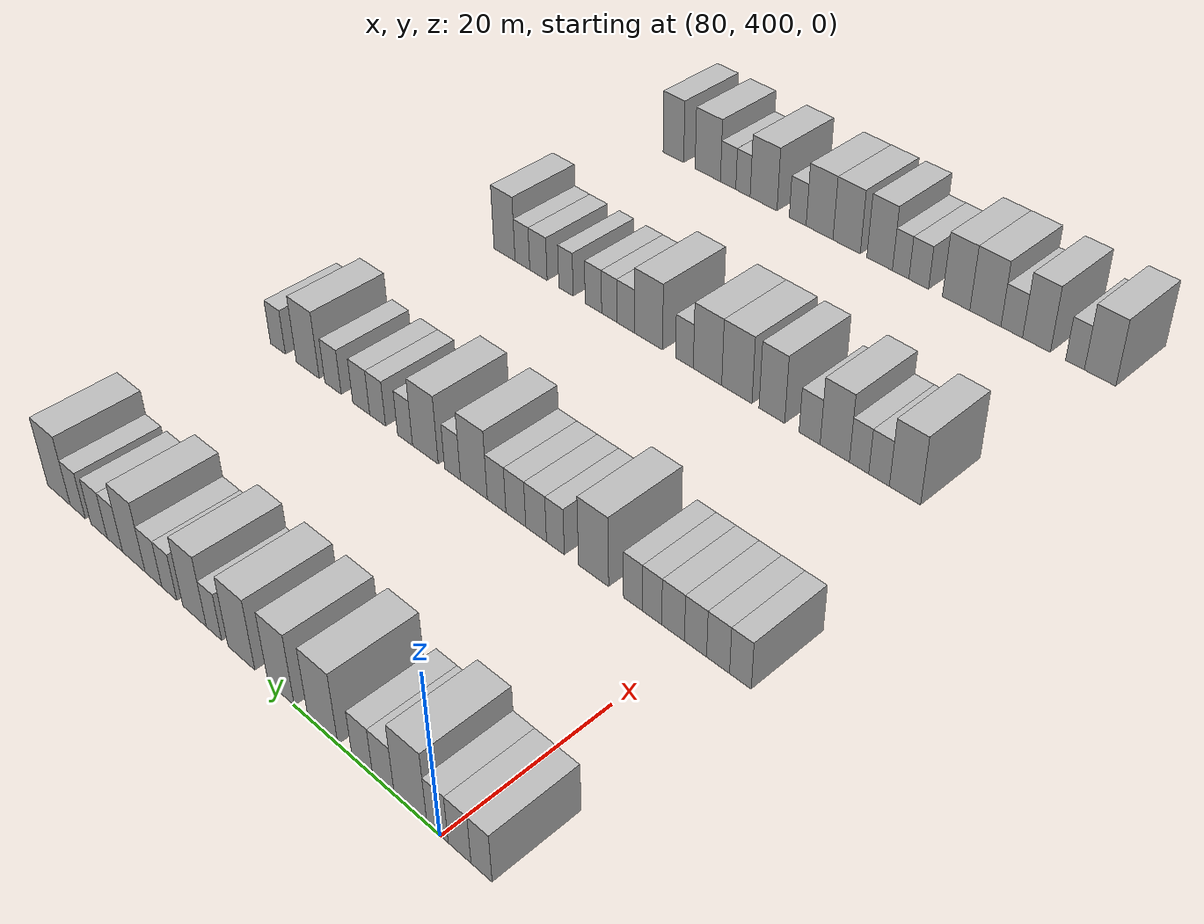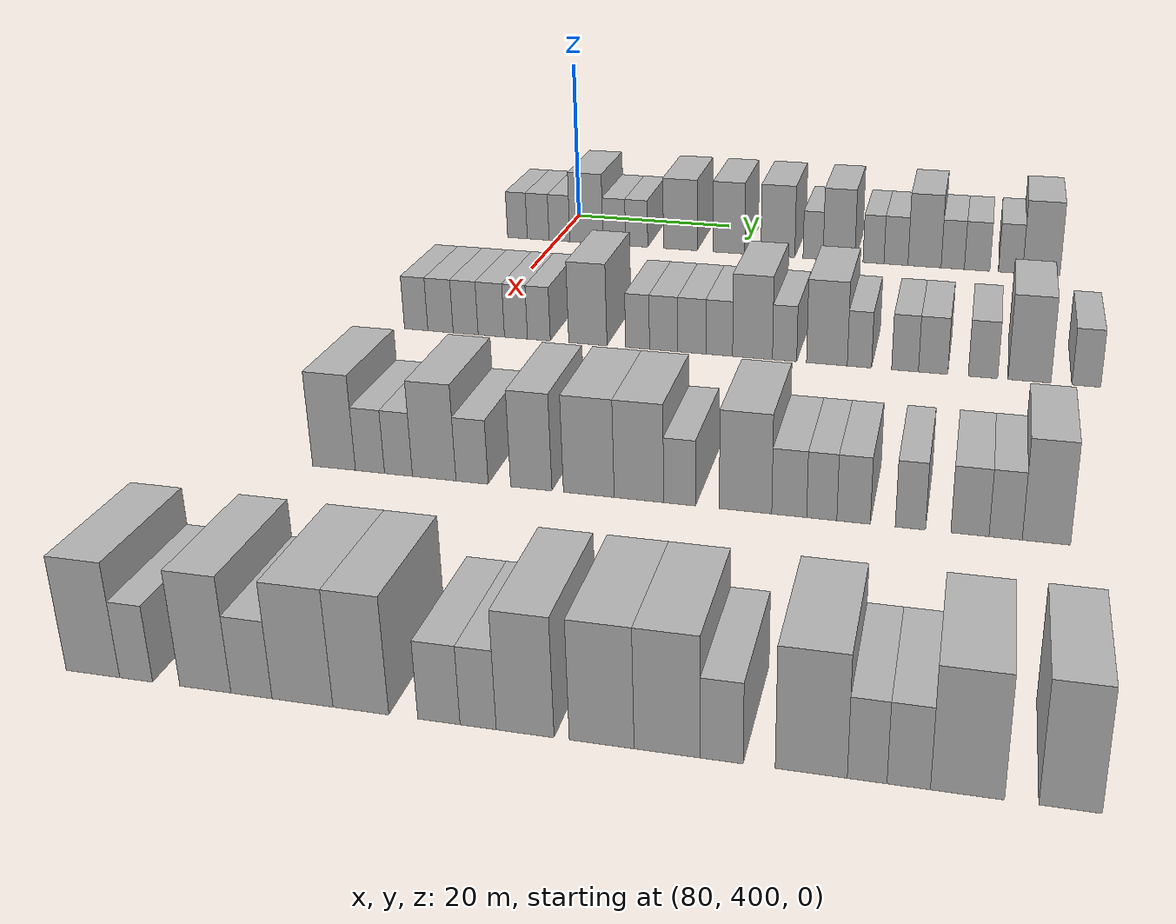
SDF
<sdf version="1.6">
 <world name="default">
  <model name="building_678">
   <static>1</static>
   <pose>85.0000 394.8514 0 0.000000 0.000000 0.000000</pose>
   <link name="link">
    <pose>0 0 3.00 0 0 0</pose>
    <collision name="collision"><geometry><box><size>10.0000 2.5784 6.0000</size></box></geometry></collision>
    <visual name="visual">
     <cast_shadows>0</cast_shadows>
     <geometry><box><size>10.0000 2.5784 6.0000</size></box></geometry>
     <material>
      <script>
       <uri>model://HANNAS_wall/materials/scripts</uri>
       <uri>model://HANNAS_wall/materials/textures</uri>
       <name>vrc/HANNAS_wall</name>
      </script>
     </material>
    </visual>
   </link>
  </model>
  <model name="building_679">
   <static>1</static>
   <pose>85.0000 397.5650 0 0.000000 0.000000 0.000000</pose>
   <link name="link">
    <pose>0 0 3.00 0 0 0</pose>
    <collision name="collision"><geometry><box><size>10.0000 2.8488 6.0000</size></box></geometry></collision>
    <visual name="visual">
     <cast_shadows>0</cast_shadows>
     <geometry><box><size>10.0000 2.8488 6.0000</size></box></geometry>
     <material>
      <script>
       <uri>model://HANNAS_wall/materials/scripts</uri>
       <uri>model://HANNAS_wall/materials/textures</uri>
       <name>vrc/HANNAS_wall</name>
      </script>
     </material>
    </visual>
   </link>
  </model>
  <model name="building_680">
   <static>1</static>
   <pose>85.0000 400.3410 0 0.000000 0.000000 0.000000</pose>
   <link name="link">
    <pose>0 0 3.00 0 0 0</pose>
    <collision name="collision"><geometry><box><size>10.0000 2.7032 6.0000</size></box></geometry></collision>
    <visual name="visual">
     <cast_shadows>0</cast_shadows>
     <geometry><box><size>10.0000 2.7032 6.0000</size></box></geometry>
     <material>
      <script>
       <uri>model://HANNAS_wall/materials/scripts</uri>
       <uri>model://HANNAS_wall/materials/textures</uri>
       <name>vrc/HANNAS_wall</name>
      </script>
     </material>
    </visual>
   </link>
  </model>
  <model name="building_681">
   <static>1</static>
   <pose>85.0000 403.8261 0 0.000000 0.000000 0.000000</pose>
   <link name="link">
    <pose>0 0 4.50 0 0 0</pose>
    <collision name="collision"><geometry><box><size>10.0000 4.2671 9.0000</size></box></geometry></collision>
    <visual name="visual">
     <cast_shadows>0</cast_shadows>
     <geometry><box><size>10.0000 4.2671 9.0000</size></box></geometry>
     <material>
      <script>
       <uri>model://HANNAS_wall/materials/scripts</uri>
       <uri>model://HANNAS_wall/materials/textures</uri>
       <name>vrc/HANNAS_wall</name>
      </script>
     </material>
    </visual>
   </link>
  </model>
  <model name="building_682">
   <static>1</static>
   <pose>85.0000 407.4063 0 0.000000 0.000000 0.000000</pose>
   <link name="link">
    <pose>0 0 3.00 0 0 0</pose>
    <collision name="collision"><geometry><box><size>10.0000 2.8934 6.0000</size></box></geometry></collision>
    <visual name="visual">
     <cast_shadows>0</cast_shadows>
     <geometry><box><size>10.0000 2.8934 6.0000</size></box></geometry>
     <material>
      <script>
       <uri>model://HANNAS_wall/materials/scripts</uri>
       <uri>model://HANNAS_wall/materials/textures</uri>
       <name>vrc/HANNAS_wall</name>
      </script>
     </material>
    </visual>
   </link>
  </model>
  <model name="building_683">
   <static>1</static>
   <pose>85.0000 410.2593 0 0.000000 0.000000 0.000000</pose>
   <link name="link">
    <pose>0 0 3.00 0 0 0</pose>
    <collision name="collision"><geometry><box><size>10.0000 2.8126 6.0000</size></box></geometry></collision>
    <visual name="visual">
     <cast_shadows>0</cast_shadows>
     <geometry><box><size>10.0000 2.8126 6.0000</size></box></geometry>
     <material>
      <script>
       <uri>model://HANNAS_wall/materials/scripts</uri>
       <uri>model://HANNAS_wall/materials/textures</uri>
       <name>vrc/HANNAS_wall</name>
      </script>
     </material>
    </visual>
   </link>
  </model>
  <model name="building_684">
   <static>1</static>
   <pose>85.0000 415.7865 0 0.000000 0.000000 0.000000</pose>
   <link name="link">
    <pose>0 0 4.50 0 0 0</pose>
    <collision name="collision"><geometry><box><size>10.0000 4.2417 9.0000</size></box></geometry></collision>
    <visual name="visual">
     <cast_shadows>0</cast_shadows>
     <geometry><box><size>10.0000 4.2417 9.0000</size></box></geometry>
     <material>
      <script>
       <uri>model://HANNAS_wall/materials/scripts</uri>
       <uri>model://HANNAS_wall/materials/textures</uri>
       <name>vrc/HANNAS_wall</name>
      </script>
     </material>
    </visual>
   </link>
  </model>
  <model name="building_685">
   <static>1</static>
   <pose>85.0000 421.8602 0 0.000000 0.000000 0.000000</pose>
   <link name="link">
    <pose>0 0 4.50 0 0 0</pose>
    <collision name="collision"><geometry><box><size>10.0000 3.9057 9.0000</size></box></geometry></collision>
    <visual name="visual">
     <cast_shadows>0</cast_shadows>
     <geometry><box><size>10.0000 3.9057 9.0000</size></box></geometry>
     <material>
      <script>
       <uri>model://HANNAS_wall/materials/scripts</uri>
       <uri>model://HANNAS_wall/materials/textures</uri>
       <name>vrc/HANNAS_wall</name>
      </script>
     </material>
    </visual>
   </link>
  </model>
  <model name="building_686">
   <static>1</static>
   <pose>85.0000 427.8847 0 0.000000 0.000000 0.000000</pose>
   <link name="link">
    <pose>0 0 4.50 0 0 0</pose>
    <collision name="collision"><geometry><box><size>10.0000 4.1433 9.0000</size></box></geometry></collision>
    <visual name="visual">
     <cast_shadows>0</cast_shadows>
     <geometry><box><size>10.0000 4.1433 9.0000</size></box></geometry>
     <material>
      <script>
       <uri>model://HANNAS_wall/materials/scripts</uri>
       <uri>model://HANNAS_wall/materials/textures</uri>
       <name>vrc/HANNAS_wall</name>
      </script>
     </material>
    </visual>
   </link>
  </model>
  <model name="building_687">
   <static>1</static>
   <pose>85.0000 432.1709 0 0.000000 0.000000 0.000000</pose>
   <link name="link">
    <pose>0 0 3.00 0 0 0</pose>
    <collision name="collision"><geometry><box><size>10.0000 2.4290 6.0000</size></box></geometry></collision>
    <visual name="visual">
     <cast_shadows>0</cast_shadows>
     <geometry><box><size>10.0000 2.4290 6.0000</size></box></geometry>
     <material>
      <script>
       <uri>model://HANNAS_wall/materials/scripts</uri>
       <uri>model://HANNAS_wall/materials/textures</uri>
       <name>vrc/HANNAS_wall</name>
      </script>
     </material>
    </visual>
   </link>
  </model>
  <model name="building_688">
   <static>1</static>
   <pose>85.0000 435.2938 0 0.000000 0.000000 0.000000</pose>
   <link name="link">
    <pose>0 0 4.50 0 0 0</pose>
    <collision name="collision"><geometry><box><size>10.0000 3.8169 9.0000</size></box></geometry></collision>
    <visual name="visual">
     <cast_shadows>0</cast_shadows>
     <geometry><box><size>10.0000 3.8169 9.0000</size></box></geometry>
     <material>
      <script>
       <uri>model://HANNAS_wall/materials/scripts</uri>
       <uri>model://HANNAS_wall/materials/textures</uri>
       <name>vrc/HANNAS_wall</name>
      </script>
     </material>
    </visual>
   </link>
  </model>
  <model name="building_689">
   <static>1</static>
   <pose>85.0000 439.4492 0 0.000000 0.000000 0.000000</pose>
   <link name="link">
    <pose>0 0 3.00 0 0 0</pose>
    <collision name="collision"><geometry><box><size>10.0000 2.4938 6.0000</size></box></geometry></collision>
    <visual name="visual">
     <cast_shadows>0</cast_shadows>
     <geometry><box><size>10.0000 2.4938 6.0000</size></box></geometry>
     <material>
      <script>
       <uri>model://HANNAS_wall/materials/scripts</uri>
       <uri>model://HANNAS_wall/materials/textures</uri>
       <name>vrc/HANNAS_wall</name>
      </script>
     </material>
    </visual>
   </link>
  </model>
  <model name="building_690">
   <static>1</static>
   <pose>85.0000 442.1234 0 0.000000 0.000000 0.000000</pose>
   <link name="link">
    <pose>0 0 3.00 0 0 0</pose>
    <collision name="collision"><geometry><box><size>10.0000 2.8547 6.0000</size></box></geometry></collision>
    <visual name="visual">
     <cast_shadows>0</cast_shadows>
     <geometry><box><size>10.0000 2.8547 6.0000</size></box></geometry>
     <material>
      <script>
       <uri>model://HANNAS_wall/materials/scripts</uri>
       <uri>model://HANNAS_wall/materials/textures</uri>
       <name>vrc/HANNAS_wall</name>
      </script>
     </material>
    </visual>
   </link>
  </model>
  <model name="building_691">
   <static>1</static>
   <pose>85.0000 445.5032 0 0.000000 0.000000 0.000000</pose>
   <link name="link">
    <pose>0 0 4.50 0 0 0</pose>
    <collision name="collision"><geometry><box><size>10.0000 3.9049 9.0000</size></box></geometry></collision>
    <visual name="visual">
     <cast_shadows>0</cast_shadows>
     <geometry><box><size>10.0000 3.9049 9.0000</size></box></geometry>
     <material>
      <script>
       <uri>model://HANNAS_wall/materials/scripts</uri>
       <uri>model://HANNAS_wall/materials/textures</uri>
       <name>vrc/HANNAS_wall</name>
      </script>
     </material>
    </visual>
   </link>
  </model>
  <model name="building_692">
   <static>1</static>
   <pose>85.0000 448.8185 0 0.000000 0.000000 0.000000</pose>
   <link name="link">
    <pose>0 0 3.00 0 0 0</pose>
    <collision name="collision"><geometry><box><size>10.0000 2.7257 6.0000</size></box></geometry></collision>
    <visual name="visual">
     <cast_shadows>0</cast_shadows>
     <geometry><box><size>10.0000 2.7257 6.0000</size></box></geometry>
     <material>
      <script>
       <uri>model://HANNAS_wall/materials/scripts</uri>
       <uri>model://HANNAS_wall/materials/textures</uri>
       <name>vrc/HANNAS_wall</name>
      </script>
     </material>
    </visual>
   </link>
  </model>
  <model name="building_693">
   <static>1</static>
   <pose>85.0000 451.6635 0 0.000000 0.000000 0.000000</pose>
   <link name="link">
    <pose>0 0 3.00 0 0 0</pose>
    <collision name="collision"><geometry><box><size>10.0000 2.9644 6.0000</size></box></geometry></collision>
    <visual name="visual">
     <cast_shadows>0</cast_shadows>
     <geometry><box><size>10.0000 2.9644 6.0000</size></box></geometry>
     <material>
      <script>
       <uri>model://HANNAS_wall/materials/scripts</uri>
       <uri>model://HANNAS_wall/materials/textures</uri>
       <name>vrc/HANNAS_wall</name>
      </script>
     </material>
    </visual>
   </link>
  </model>
  <model name="building_694">
   <static>1</static>
   <pose>85.0000 455.5320 0 0.000000 0.000000 0.000000</pose>
   <link name="link">
    <pose>0 0 3.00 0 0 0</pose>
    <collision name="collision"><geometry><box><size>10.0000 2.7726 6.0000</size></box></geometry></collision>
    <visual name="visual">
     <cast_shadows>0</cast_shadows>
     <geometry><box><size>10.0000 2.7726 6.0000</size></box></geometry>
     <material>
      <script>
       <uri>model://HANNAS_wall/materials/scripts</uri>
       <uri>model://HANNAS_wall/materials/textures</uri>
       <name>vrc/HANNAS_wall</name>
      </script>
     </material>
    </visual>
   </link>
  </model>
  <model name="building_695">
   <static>1</static>
   <pose>85.0000 459.0496 0 0.000000 0.000000 0.000000</pose>
   <link name="link">
    <pose>0 0 4.50 0 0 0</pose>
    <collision name="collision"><geometry><box><size>10.0000 4.2625 9.0000</size></box></geometry></collision>
    <visual name="visual">
     <cast_shadows>0</cast_shadows>
     <geometry><box><size>10.0000 4.2625 9.0000</size></box></geometry>
     <material>
      <script>
       <uri>model://HANNAS_wall/materials/scripts</uri>
       <uri>model://HANNAS_wall/materials/textures</uri>
       <name>vrc/HANNAS_wall</name>
      </script>
     </material>
    </visual>
   </link>
  </model>
  <model name="building_905">
   <static>1</static>
   <pose>115.0000 393.6490 0 0.000000 0.000000 0.000000</pose>
   <link name="link">
    <pose>0 0 3.00 0 0 0</pose>
    <collision name="collision"><geometry><box><size>10.0000 2.6375 6.0000</size></box></geometry></collision>
    <visual name="visual">
     <cast_shadows>0</cast_shadows>
     <geometry><box><size>10.0000 2.6375 6.0000</size></box></geometry>
     <material>
      <script>
       <uri>model://HANNAS_wall/materials/scripts</uri>
       <uri>model://HANNAS_wall/materials/textures</uri>
       <name>vrc/HANNAS_wall</name>
      </script>
     </material>
    </visual>
   </link>
  </model>
  <model name="building_906">
   <static>1</static>
   <pose>115.0000 396.3883 0 0.000000 0.000000 0.000000</pose>
   <link name="link">
    <pose>0 0 3.00 0 0 0</pose>
    <collision name="collision"><geometry><box><size>10.0000 2.8410 6.0000</size></box></geometry></collision>
    <visual name="visual">
     <cast_shadows>0</cast_shadows>
     <geometry><box><size>10.0000 2.8410 6.0000</size></box></geometry>
     <material>
      <script>
       <uri>model://HANNAS_wall/materials/scripts</uri>
       <uri>model://HANNAS_wall/materials/textures</uri>
       <name>vrc/HANNAS_wall</name>
      </script>
     </material>
    </visual>
   </link>
  </model>
  <model name="building_907">
   <static>1</static>
   <pose>115.0000 399.1992 0 0.000000 0.000000 0.000000</pose>
   <link name="link">
    <pose>0 0 3.00 0 0 0</pose>
    <collision name="collision"><geometry><box><size>10.0000 2.7807 6.0000</size></box></geometry></collision>
    <visual name="visual">
     <cast_shadows>0</cast_shadows>
     <geometry><box><size>10.0000 2.7807 6.0000</size></box></geometry>
     <material>
      <script>
       <uri>model://HANNAS_wall/materials/scripts</uri>
       <uri>model://HANNAS_wall/materials/textures</uri>
       <name>vrc/HANNAS_wall</name>
      </script>
     </material>
    </visual>
   </link>
  </model>
  <model name="building_908">
   <static>1</static>
   <pose>115.0000 402.0448 0 0.000000 0.000000 0.000000</pose>
   <link name="link">
    <pose>0 0 3.00 0 0 0</pose>
    <collision name="collision"><geometry><box><size>10.0000 2.9106 6.0000</size></box></geometry></collision>
    <visual name="visual">
     <cast_shadows>0</cast_shadows>
     <geometry><box><size>10.0000 2.9106 6.0000</size></box></geometry>
     <material>
      <script>
       <uri>model://HANNAS_wall/materials/scripts</uri>
       <uri>model://HANNAS_wall/materials/textures</uri>
       <name>vrc/HANNAS_wall</name>
      </script>
     </material>
    </visual>
   </link>
  </model>
  <model name="building_909">
   <static>1</static>
   <pose>115.0000 404.7668 0 0.000000 0.000000 0.000000</pose>
   <link name="link">
    <pose>0 0 3.00 0 0 0</pose>
    <collision name="collision"><geometry><box><size>10.0000 2.5333 6.0000</size></box></geometry></collision>
    <visual name="visual">
     <cast_shadows>0</cast_shadows>
     <geometry><box><size>10.0000 2.5333 6.0000</size></box></geometry>
     <material>
      <script>
       <uri>model://HANNAS_wall/materials/scripts</uri>
       <uri>model://HANNAS_wall/materials/textures</uri>
       <name>vrc/HANNAS_wall</name>
      </script>
     </material>
    </visual>
   </link>
  </model>
  <model name="building_910">
   <static>1</static>
   <pose>115.0000 407.2809 0 0.000000 0.000000 0.000000</pose>
   <link name="link">
    <pose>0 0 3.00 0 0 0</pose>
    <collision name="collision"><geometry><box><size>10.0000 2.4949 6.0000</size></box></geometry></collision>
    <visual name="visual">
     <cast_shadows>0</cast_shadows>
     <geometry><box><size>10.0000 2.4949 6.0000</size></box></geometry>
     <material>
      <script>
       <uri>model://HANNAS_wall/materials/scripts</uri>
       <uri>model://HANNAS_wall/materials/textures</uri>
       <name>vrc/HANNAS_wall</name>
      </script>
     </material>
    </visual>
   </link>
  </model>
  <model name="building_911">
   <static>1</static>
   <pose>115.0000 412.5901 0 0.000000 0.000000 0.000000</pose>
   <link name="link">
    <pose>0 0 4.50 0 0 0</pose>
    <collision name="collision"><geometry><box><size>10.0000 4.1234 9.0000</size></box></geometry></collision>
    <visual name="visual">
     <cast_shadows>0</cast_shadows>
     <geometry><box><size>10.0000 4.1234 9.0000</size></box></geometry>
     <material>
      <script>
       <uri>model://HANNAS_wall/materials/scripts</uri>
       <uri>model://HANNAS_wall/materials/textures</uri>
       <name>vrc/HANNAS_wall</name>
      </script>
     </material>
    </visual>
   </link>
  </model>
  <model name="building_912">
   <static>1</static>
   <pose>115.0000 417.9195 0 0.000000 0.000000 0.000000</pose>
   <link name="link">
    <pose>0 0 3.00 0 0 0</pose>
    <collision name="collision"><geometry><box><size>10.0000 2.5356 6.0000</size></box></geometry></collision>
    <visual name="visual">
     <cast_shadows>0</cast_shadows>
     <geometry><box><size>10.0000 2.5356 6.0000</size></box></geometry>
     <material>
      <script>
       <uri>model://HANNAS_wall/materials/scripts</uri>
       <uri>model://HANNAS_wall/materials/textures</uri>
       <name>vrc/HANNAS_wall</name>
      </script>
     </material>
    </visual>
   </link>
  </model>
  <model name="building_913">
   <static>1</static>
   <pose>115.0000 420.6814 0 0.000000 0.000000 0.000000</pose>
   <link name="link">
    <pose>0 0 3.00 0 0 0</pose>
    <collision name="collision"><geometry><box><size>10.0000 2.9881 6.0000</size></box></geometry></collision>
    <visual name="visual">
     <cast_shadows>0</cast_shadows>
     <geometry><box><size>10.0000 2.9881 6.0000</size></box></geometry>
     <material>
      <script>
       <uri>model://HANNAS_wall/materials/scripts</uri>
       <uri>model://HANNAS_wall/materials/textures</uri>
       <name>vrc/HANNAS_wall</name>
      </script>
     </material>
    </visual>
   </link>
  </model>
  <model name="building_914">
   <static>1</static>
   <pose>115.0000 423.6394 0 0.000000 0.000000 0.000000</pose>
   <link name="link">
    <pose>0 0 3.00 0 0 0</pose>
    <collision name="collision"><geometry><box><size>10.0000 2.9279 6.0000</size></box></geometry></collision>
    <visual name="visual">
     <cast_shadows>0</cast_shadows>
     <geometry><box><size>10.0000 2.9279 6.0000</size></box></geometry>
     <material>
      <script>
       <uri>model://HANNAS_wall/materials/scripts</uri>
       <uri>model://HANNAS_wall/materials/textures</uri>
       <name>vrc/HANNAS_wall</name>
      </script>
     </material>
    </visual>
   </link>
  </model>
  <model name="building_915">
   <static>1</static>
   <pose>115.0000 426.4967 0 0.000000 0.000000 0.000000</pose>
   <link name="link">
    <pose>0 0 3.00 0 0 0</pose>
    <collision name="collision"><geometry><box><size>10.0000 2.7866 6.0000</size></box></geometry></collision>
    <visual name="visual">
     <cast_shadows>0</cast_shadows>
     <geometry><box><size>10.0000 2.7866 6.0000</size></box></geometry>
     <material>
      <script>
       <uri>model://HANNAS_wall/materials/scripts</uri>
       <uri>model://HANNAS_wall/materials/textures</uri>
       <name>vrc/HANNAS_wall</name>
      </script>
     </material>
    </visual>
   </link>
  </model>
  <model name="building_916">
   <static>1</static>
   <pose>115.0000 429.9448 0 0.000000 0.000000 0.000000</pose>
   <link name="link">
    <pose>0 0 4.50 0 0 0</pose>
    <collision name="collision"><geometry><box><size>10.0000 4.1096 9.0000</size></box></geometry></collision>
    <visual name="visual">
     <cast_shadows>0</cast_shadows>
     <geometry><box><size>10.0000 4.1096 9.0000</size></box></geometry>
     <material>
      <script>
       <uri>model://HANNAS_wall/materials/scripts</uri>
       <uri>model://HANNAS_wall/materials/textures</uri>
       <name>vrc/HANNAS_wall</name>
      </script>
     </material>
    </visual>
   </link>
  </model>
  <model name="building_917">
   <static>1</static>
   <pose>115.0000 433.2376 0 0.000000 0.000000 0.000000</pose>
   <link name="link">
    <pose>0 0 3.00 0 0 0</pose>
    <collision name="collision"><geometry><box><size>10.0000 2.4759 6.0000</size></box></geometry></collision>
    <visual name="visual">
     <cast_shadows>0</cast_shadows>
     <geometry><box><size>10.0000 2.4759 6.0000</size></box></geometry>
     <material>
      <script>
       <uri>model://HANNAS_wall/materials/scripts</uri>
       <uri>model://HANNAS_wall/materials/textures</uri>
       <name>vrc/HANNAS_wall</name>
      </script>
     </material>
    </visual>
   </link>
  </model>
  <model name="building_918">
   <static>1</static>
   <pose>115.0000 437.5346 0 0.000000 0.000000 0.000000</pose>
   <link name="link">
    <pose>0 0 4.50 0 0 0</pose>
    <collision name="collision"><geometry><box><size>10.0000 4.1181 9.0000</size></box></geometry></collision>
    <visual name="visual">
     <cast_shadows>0</cast_shadows>
     <geometry><box><size>10.0000 4.1181 9.0000</size></box></geometry>
     <material>
      <script>
       <uri>model://HANNAS_wall/materials/scripts</uri>
       <uri>model://HANNAS_wall/materials/textures</uri>
       <name>vrc/HANNAS_wall</name>
      </script>
     </material>
    </visual>
   </link>
  </model>
  <model name="building_919">
   <static>1</static>
   <pose>115.0000 440.8114 0 0.000000 0.000000 0.000000</pose>
   <link name="link">
    <pose>0 0 3.00 0 0 0</pose>
    <collision name="collision"><geometry><box><size>10.0000 2.4356 6.0000</size></box></geometry></collision>
    <visual name="visual">
     <cast_shadows>0</cast_shadows>
     <geometry><box><size>10.0000 2.4356 6.0000</size></box></geometry>
     <material>
      <script>
       <uri>model://HANNAS_wall/materials/scripts</uri>
       <uri>model://HANNAS_wall/materials/textures</uri>
       <name>vrc/HANNAS_wall</name>
      </script>
     </material>
    </visual>
   </link>
  </model>
  <model name="building_920">
   <static>1</static>
   <pose>115.0000 445.3553 0 0.000000 0.000000 0.000000</pose>
   <link name="link">
    <pose>0 0 3.00 0 0 0</pose>
    <collision name="collision"><geometry><box><size>10.0000 2.6522 6.0000</size></box></geometry></collision>
    <visual name="visual">
     <cast_shadows>0</cast_shadows>
     <geometry><box><size>10.0000 2.6522 6.0000</size></box></geometry>
     <material>
      <script>
       <uri>model://HANNAS_wall/materials/scripts</uri>
       <uri>model://HANNAS_wall/materials/textures</uri>
       <name>vrc/HANNAS_wall</name>
      </script>
     </material>
    </visual>
   </link>
  </model>
  <model name="building_921">
   <static>1</static>
   <pose>115.0000 448.1251 0 0.000000 0.000000 0.000000</pose>
   <link name="link">
    <pose>0 0 3.00 0 0 0</pose>
    <collision name="collision"><geometry><box><size>10.0000 2.8874 6.0000</size></box></geometry></collision>
    <visual name="visual">
     <cast_shadows>0</cast_shadows>
     <geometry><box><size>10.0000 2.8874 6.0000</size></box></geometry>
     <material>
      <script>
       <uri>model://HANNAS_wall/materials/scripts</uri>
       <uri>model://HANNAS_wall/materials/textures</uri>
       <name>vrc/HANNAS_wall</name>
      </script>
     </material>
    </visual>
   </link>
  </model>
  <model name="building_922">
   <static>1</static>
   <pose>115.0000 452.9987 0 0.000000 0.000000 0.000000</pose>
   <link name="link">
    <pose>0 0 3.00 0 0 0</pose>
    <collision name="collision"><geometry><box><size>10.0000 2.8598 6.0000</size></box></geometry></collision>
    <visual name="visual">
     <cast_shadows>0</cast_shadows>
     <geometry><box><size>10.0000 2.8598 6.0000</size></box></geometry>
     <material>
      <script>
       <uri>model://HANNAS_wall/materials/scripts</uri>
       <uri>model://HANNAS_wall/materials/textures</uri>
       <name>vrc/HANNAS_wall</name>
      </script>
     </material>
    </visual>
   </link>
  </model>
  <model name="building_923">
   <static>1</static>
   <pose>115.0000 457.4845 0 0.000000 0.000000 0.000000</pose>
   <link name="link">
    <pose>0 0 4.50 0 0 0</pose>
    <collision name="collision"><geometry><box><size>10.0000 4.1117 9.0000</size></box></geometry></collision>
    <visual name="visual">
     <cast_shadows>0</cast_shadows>
     <geometry><box><size>10.0000 4.1117 9.0000</size></box></geometry>
     <material>
      <script>
       <uri>model://HANNAS_wall/materials/scripts</uri>
       <uri>model://HANNAS_wall/materials/textures</uri>
       <name>vrc/HANNAS_wall</name>
      </script>
     </material>
    </visual>
   </link>
  </model>
  <model name="building_924">
   <static>1</static>
   <pose>115.0000 462.9032 0 0.000000 0.000000 0.000000</pose>
   <link name="link">
    <pose>0 0 3.00 0 0 0</pose>
    <collision name="collision"><geometry><box><size>10.0000 2.7257 6.0000</size></box></geometry></collision>
    <visual name="visual">
     <cast_shadows>0</cast_shadows>
     <geometry><box><size>10.0000 2.7257 6.0000</size></box></geometry>
     <material>
      <script>
       <uri>model://HANNAS_wall/materials/scripts</uri>
       <uri>model://HANNAS_wall/materials/textures</uri>
       <name>vrc/HANNAS_wall</name>
      </script>
     </material>
    </visual>
   </link>
  </model>
  <model name="building_1121">
   <static>1</static>
   <pose>145.0000 398.4001 0 0.000000 0.000000 0.000000</pose>
   <link name="link">
    <pose>0 0 4.50 0 0 0</pose>
    <collision name="collision"><geometry><box><size>10.0000 3.9708 9.0000</size></box></geometry></collision>
    <visual name="visual">
     <cast_shadows>0</cast_shadows>
     <geometry><box><size>10.0000 3.9708 9.0000</size></box></geometry>
     <material>
      <script>
       <uri>model://HANNAS_wall/materials/scripts</uri>
       <uri>model://HANNAS_wall/materials/textures</uri>
       <name>vrc/HANNAS_wall</name>
      </script>
     </material>
    </visual>
   </link>
  </model>
  <model name="building_1122">
   <static>1</static>
   <pose>145.0000 401.7222 0 0.000000 0.000000 0.000000</pose>
   <link name="link">
    <pose>0 0 3.00 0 0 0</pose>
    <collision name="collision"><geometry><box><size>10.0000 2.6736 6.0000</size></box></geometry></collision>
    <visual name="visual">
     <cast_shadows>0</cast_shadows>
     <geometry><box><size>10.0000 2.6736 6.0000</size></box></geometry>
     <material>
      <script>
       <uri>model://HANNAS_wall/materials/scripts</uri>
       <uri>model://HANNAS_wall/materials/textures</uri>
       <name>vrc/HANNAS_wall</name>
      </script>
     </material>
    </visual>
   </link>
  </model>
  <model name="building_1123">
   <static>1</static>
   <pose>145.0000 404.3338 0 0.000000 0.000000 0.000000</pose>
   <link name="link">
    <pose>0 0 3.00 0 0 0</pose>
    <collision name="collision"><geometry><box><size>10.0000 2.5496 6.0000</size></box></geometry></collision>
    <visual name="visual">
     <cast_shadows>0</cast_shadows>
     <geometry><box><size>10.0000 2.5496 6.0000</size></box></geometry>
     <material>
      <script>
       <uri>model://HANNAS_wall/materials/scripts</uri>
       <uri>model://HANNAS_wall/materials/textures</uri>
       <name>vrc/HANNAS_wall</name>
      </script>
     </material>
    </visual>
   </link>
  </model>
  <model name="building_1124">
   <static>1</static>
   <pose>145.0000 407.5736 0 0.000000 0.000000 0.000000</pose>
   <link name="link">
    <pose>0 0 4.50 0 0 0</pose>
    <collision name="collision"><geometry><box><size>10.0000 3.9299 9.0000</size></box></geometry></collision>
    <visual name="visual">
     <cast_shadows>0</cast_shadows>
     <geometry><box><size>10.0000 3.9299 9.0000</size></box></geometry>
     <material>
      <script>
       <uri>model://HANNAS_wall/materials/scripts</uri>
       <uri>model://HANNAS_wall/materials/textures</uri>
       <name>vrc/HANNAS_wall</name>
      </script>
     </material>
    </visual>
   </link>
  </model>
  <model name="building_1125">
   <static>1</static>
   <pose>145.0000 410.9791 0 0.000000 0.000000 0.000000</pose>
   <link name="link">
    <pose>0 0 3.00 0 0 0</pose>
    <collision name="collision"><geometry><box><size>10.0000 2.8812 6.0000</size></box></geometry></collision>
    <visual name="visual">
     <cast_shadows>0</cast_shadows>
     <geometry><box><size>10.0000 2.8812 6.0000</size></box></geometry>
     <material>
      <script>
       <uri>model://HANNAS_wall/materials/scripts</uri>
       <uri>model://HANNAS_wall/materials/textures</uri>
       <name>vrc/HANNAS_wall</name>
      </script>
     </material>
    </visual>
   </link>
  </model>
  <model name="building_1126">
   <static>1</static>
   <pose>145.0000 416.2349 0 0.000000 0.000000 0.000000</pose>
   <link name="link">
    <pose>0 0 4.50 0 0 0</pose>
    <collision name="collision"><geometry><box><size>10.0000 3.6305 9.0000</size></box></geometry></collision>
    <visual name="visual">
     <cast_shadows>0</cast_shadows>
     <geometry><box><size>10.0000 3.6305 9.0000</size></box></geometry>
     <material>
      <script>
       <uri>model://HANNAS_wall/materials/scripts</uri>
       <uri>model://HANNAS_wall/materials/textures</uri>
       <name>vrc/HANNAS_wall</name>
      </script>
     </material>
    </visual>
   </link>
  </model>
  <model name="building_1127">
   <static>1</static>
   <pose>145.0000 421.2517 0 0.000000 0.000000 0.000000</pose>
   <link name="link">
    <pose>0 0 4.50 0 0 0</pose>
    <collision name="collision"><geometry><box><size>10.0000 4.4030 9.0000</size></box></geometry></collision>
    <visual name="visual">
     <cast_shadows>0</cast_shadows>
     <geometry><box><size>10.0000 4.4030 9.0000</size></box></geometry>
     <material>
      <script>
       <uri>model://HANNAS_wall/materials/scripts</uri>
       <uri>model://HANNAS_wall/materials/textures</uri>
       <name>vrc/HANNAS_wall</name>
      </script>
     </material>
    </visual>
   </link>
  </model>
  <model name="building_1128">
   <static>1</static>
   <pose>145.0000 425.5715 0 0.000000 0.000000 0.000000</pose>
   <link name="link">
    <pose>0 0 4.50 0 0 0</pose>
    <collision name="collision"><geometry><box><size>10.0000 4.2366 9.0000</size></box></geometry></collision>
    <visual name="visual">
     <cast_shadows>0</cast_shadows>
     <geometry><box><size>10.0000 4.2366 9.0000</size></box></geometry>
     <material>
      <script>
       <uri>model://HANNAS_wall/materials/scripts</uri>
       <uri>model://HANNAS_wall/materials/textures</uri>
       <name>vrc/HANNAS_wall</name>
      </script>
     </material>
    </visual>
   </link>
  </model>
  <model name="building_1129">
   <static>1</static>
   <pose>145.0000 429.0307 0 0.000000 0.000000 0.000000</pose>
   <link name="link">
    <pose>0 0 3.00 0 0 0</pose>
    <collision name="collision"><geometry><box><size>10.0000 2.6817 6.0000</size></box></geometry></collision>
    <visual name="visual">
     <cast_shadows>0</cast_shadows>
     <geometry><box><size>10.0000 2.6817 6.0000</size></box></geometry>
     <material>
      <script>
       <uri>model://HANNAS_wall/materials/scripts</uri>
       <uri>model://HANNAS_wall/materials/textures</uri>
       <name>vrc/HANNAS_wall</name>
      </script>
     </material>
    </visual>
   </link>
  </model>
  <model name="building_1130">
   <static>1</static>
   <pose>145.0000 434.5420 0 0.000000 0.000000 0.000000</pose>
   <link name="link">
    <pose>0 0 4.50 0 0 0</pose>
    <collision name="collision"><geometry><box><size>10.0000 4.3409 9.0000</size></box></geometry></collision>
    <visual name="visual">
     <cast_shadows>0</cast_shadows>
     <geometry><box><size>10.0000 4.3409 9.0000</size></box></geometry>
     <material>
      <script>
       <uri>model://HANNAS_wall/materials/scripts</uri>
       <uri>model://HANNAS_wall/materials/textures</uri>
       <name>vrc/HANNAS_wall</name>
      </script>
     </material>
    </visual>
   </link>
  </model>
  <model name="building_1131">
   <static>1</static>
   <pose>145.0000 438.1429 0 0.000000 0.000000 0.000000</pose>
   <link name="link">
    <pose>0 0 3.00 0 0 0</pose>
    <collision name="collision"><geometry><box><size>10.0000 2.8610 6.0000</size></box></geometry></collision>
    <visual name="visual">
     <cast_shadows>0</cast_shadows>
     <geometry><box><size>10.0000 2.8610 6.0000</size></box></geometry>
     <material>
      <script>
       <uri>model://HANNAS_wall/materials/scripts</uri>
       <uri>model://HANNAS_wall/materials/textures</uri>
       <name>vrc/HANNAS_wall</name>
      </script>
     </material>
    </visual>
   </link>
  </model>
  <model name="building_1132">
   <static>1</static>
   <pose>145.0000 440.8025 0 0.000000 0.000000 0.000000</pose>
   <link name="link">
    <pose>0 0 3.00 0 0 0</pose>
    <collision name="collision"><geometry><box><size>10.0000 2.4582 6.0000</size></box></geometry></collision>
    <visual name="visual">
     <cast_shadows>0</cast_shadows>
     <geometry><box><size>10.0000 2.4582 6.0000</size></box></geometry>
     <material>
      <script>
       <uri>model://HANNAS_wall/materials/scripts</uri>
       <uri>model://HANNAS_wall/materials/textures</uri>
       <name>vrc/HANNAS_wall</name>
      </script>
     </material>
    </visual>
   </link>
  </model>
  <model name="building_1133">
   <static>1</static>
   <pose>145.0000 443.3816 0 0.000000 0.000000 0.000000</pose>
   <link name="link">
    <pose>0 0 3.00 0 0 0</pose>
    <collision name="collision"><geometry><box><size>10.0000 2.6999 6.0000</size></box></geometry></collision>
    <visual name="visual">
     <cast_shadows>0</cast_shadows>
     <geometry><box><size>10.0000 2.6999 6.0000</size></box></geometry>
     <material>
      <script>
       <uri>model://HANNAS_wall/materials/scripts</uri>
       <uri>model://HANNAS_wall/materials/textures</uri>
       <name>vrc/HANNAS_wall</name>
      </script>
     </material>
    </visual>
   </link>
  </model>
  <model name="building_1134">
   <static>1</static>
   <pose>145.0000 447.9357 0 0.000000 0.000000 0.000000</pose>
   <link name="link">
    <pose>0 0 3.00 0 0 0</pose>
    <collision name="collision"><geometry><box><size>10.0000 2.4083 6.0000</size></box></geometry></collision>
    <visual name="visual">
     <cast_shadows>0</cast_shadows>
     <geometry><box><size>10.0000 2.4083 6.0000</size></box></geometry>
     <material>
      <script>
       <uri>model://HANNAS_wall/materials/scripts</uri>
       <uri>model://HANNAS_wall/materials/textures</uri>
       <name>vrc/HANNAS_wall</name>
      </script>
     </material>
    </visual>
   </link>
  </model>
  <model name="building_1135">
   <static>1</static>
   <pose>145.0000 452.6323 0 0.000000 0.000000 0.000000</pose>
   <link name="link">
    <pose>0 0 3.00 0 0 0</pose>
    <collision name="collision"><geometry><box><size>10.0000 2.9848 6.0000</size></box></geometry></collision>
    <visual name="visual">
     <cast_shadows>0</cast_shadows>
     <geometry><box><size>10.0000 2.9848 6.0000</size></box></geometry>
     <material>
      <script>
       <uri>model://HANNAS_wall/materials/scripts</uri>
       <uri>model://HANNAS_wall/materials/textures</uri>
       <name>vrc/HANNAS_wall</name>
      </script>
     </material>
    </visual>
   </link>
  </model>
  <model name="building_1136">
   <static>1</static>
   <pose>145.0000 455.4127 0 0.000000 0.000000 0.000000</pose>
   <link name="link">
    <pose>0 0 3.00 0 0 0</pose>
    <collision name="collision"><geometry><box><size>10.0000 2.5759 6.0000</size></box></geometry></collision>
    <visual name="visual">
     <cast_shadows>0</cast_shadows>
     <geometry><box><size>10.0000 2.5759 6.0000</size></box></geometry>
     <material>
      <script>
       <uri>model://HANNAS_wall/materials/scripts</uri>
       <uri>model://HANNAS_wall/materials/textures</uri>
       <name>vrc/HANNAS_wall</name>
      </script>
     </material>
    </visual>
   </link>
  </model>
  <model name="building_1137">
   <static>1</static>
   <pose>145.0000 458.5567 0 0.000000 0.000000 0.000000</pose>
   <link name="link">
    <pose>0 0 4.50 0 0 0</pose>
    <collision name="collision"><geometry><box><size>10.0000 3.7121 9.0000</size></box></geometry></collision>
    <visual name="visual">
     <cast_shadows>0</cast_shadows>
     <geometry><box><size>10.0000 3.7121 9.0000</size></box></geometry>
     <material>
      <script>
       <uri>model://HANNAS_wall/materials/scripts</uri>
       <uri>model://HANNAS_wall/materials/textures</uri>
       <name>vrc/HANNAS_wall</name>
      </script>
     </material>
    </visual>
   </link>
  </model>
  <model name="building_1338">
   <static>1</static>
   <pose>175.0000 394.9979 0 0.000000 0.000000 0.000000</pose>
   <link name="link">
    <pose>0 0 4.50 0 0 0</pose>
    <collision name="collision"><geometry><box><size>10.0000 4.0244 9.0000</size></box></geometry></collision>
    <visual name="visual">
     <cast_shadows>0</cast_shadows>
     <geometry><box><size>10.0000 4.0244 9.0000</size></box></geometry>
     <material>
      <script>
       <uri>model://HANNAS_wall/materials/scripts</uri>
       <uri>model://HANNAS_wall/materials/textures</uri>
       <name>vrc/HANNAS_wall</name>
      </script>
     </material>
    </visual>
   </link>
  </model>
  <model name="building_1339">
   <static>1</static>
   <pose>175.0000 398.2354 0 0.000000 0.000000 0.000000</pose>
   <link name="link">
    <pose>0 0 3.00 0 0 0</pose>
    <collision name="collision"><geometry><box><size>10.0000 2.4505 6.0000</size></box></geometry></collision>
    <visual name="visual">
     <cast_shadows>0</cast_shadows>
     <geometry><box><size>10.0000 2.4505 6.0000</size></box></geometry>
     <material>
      <script>
       <uri>model://HANNAS_wall/materials/scripts</uri>
       <uri>model://HANNAS_wall/materials/textures</uri>
       <name>vrc/HANNAS_wall</name>
      </script>
     </material>
    </visual>
   </link>
  </model>
  <model name="building_1340">
   <static>1</static>
   <pose>175.0000 403.3259 0 0.000000 0.000000 0.000000</pose>
   <link name="link">
    <pose>0 0 4.50 0 0 0</pose>
    <collision name="collision"><geometry><box><size>10.0000 3.7306 9.0000</size></box></geometry></collision>
    <visual name="visual">
     <cast_shadows>0</cast_shadows>
     <geometry><box><size>10.0000 3.7306 9.0000</size></box></geometry>
     <material>
      <script>
       <uri>model://HANNAS_wall/materials/scripts</uri>
       <uri>model://HANNAS_wall/materials/textures</uri>
       <name>vrc/HANNAS_wall</name>
      </script>
     </material>
    </visual>
   </link>
  </model>
  <model name="building_1341">
   <static>1</static>
   <pose>175.0000 406.6685 0 0.000000 0.000000 0.000000</pose>
   <link name="link">
    <pose>0 0 3.00 0 0 0</pose>
    <collision name="collision"><geometry><box><size>10.0000 2.9545 6.0000</size></box></geometry></collision>
    <visual name="visual">
     <cast_shadows>0</cast_shadows>
     <geometry><box><size>10.0000 2.9545 6.0000</size></box></geometry>
     <material>
      <script>
       <uri>model://HANNAS_wall/materials/scripts</uri>
       <uri>model://HANNAS_wall/materials/textures</uri>
       <name>vrc/HANNAS_wall</name>
      </script>
     </material>
    </visual>
   </link>
  </model>
  <model name="building_1342">
   <static>1</static>
   <pose>175.0000 410.3050 0 0.000000 0.000000 0.000000</pose>
   <link name="link">
    <pose>0 0 4.50 0 0 0</pose>
    <collision name="collision"><geometry><box><size>10.0000 4.3185 9.0000</size></box></geometry></collision>
    <visual name="visual">
     <cast_shadows>0</cast_shadows>
     <geometry><box><size>10.0000 4.3185 9.0000</size></box></geometry>
     <material>
      <script>
       <uri>model://HANNAS_wall/materials/scripts</uri>
       <uri>model://HANNAS_wall/materials/textures</uri>
       <name>vrc/HANNAS_wall</name>
      </script>
     </material>
    </visual>
   </link>
  </model>
  <model name="building_1343">
   <static>1</static>
   <pose>175.0000 414.4115 0 0.000000 0.000000 0.000000</pose>
   <link name="link">
    <pose>0 0 4.50 0 0 0</pose>
    <collision name="collision"><geometry><box><size>10.0000 3.8946 9.0000</size></box></geometry></collision>
    <visual name="visual">
     <cast_shadows>0</cast_shadows>
     <geometry><box><size>10.0000 3.8946 9.0000</size></box></geometry>
     <material>
      <script>
       <uri>model://HANNAS_wall/materials/scripts</uri>
       <uri>model://HANNAS_wall/materials/textures</uri>
       <name>vrc/HANNAS_wall</name>
      </script>
     </material>
    </visual>
   </link>
  </model>
  <model name="building_1344">
   <static>1</static>
   <pose>175.0000 419.7980 0 0.000000 0.000000 0.000000</pose>
   <link name="link">
    <pose>0 0 3.00 0 0 0</pose>
    <collision name="collision"><geometry><box><size>10.0000 2.8783 6.0000</size></box></geometry></collision>
    <visual name="visual">
     <cast_shadows>0</cast_shadows>
     <geometry><box><size>10.0000 2.8783 6.0000</size></box></geometry>
     <material>
      <script>
       <uri>model://HANNAS_wall/materials/scripts</uri>
       <uri>model://HANNAS_wall/materials/textures</uri>
       <name>vrc/HANNAS_wall</name>
      </script>
     </material>
    </visual>
   </link>
  </model>
  <model name="building_1345">
   <static>1</static>
   <pose>175.0000 422.4595 0 0.000000 0.000000 0.000000</pose>
   <link name="link">
    <pose>0 0 3.00 0 0 0</pose>
    <collision name="collision"><geometry><box><size>10.0000 2.4448 6.0000</size></box></geometry></collision>
    <visual name="visual">
     <cast_shadows>0</cast_shadows>
     <geometry><box><size>10.0000 2.4448 6.0000</size></box></geometry>
     <material>
      <script>
       <uri>model://HANNAS_wall/materials/scripts</uri>
       <uri>model://HANNAS_wall/materials/textures</uri>
       <name>vrc/HANNAS_wall</name>
      </script>
     </material>
    </visual>
   </link>
  </model>
  <model name="building_1346">
   <static>1</static>
   <pose>175.0000 425.6099 0 0.000000 0.000000 0.000000</pose>
   <link name="link">
    <pose>0 0 4.50 0 0 0</pose>
    <collision name="collision"><geometry><box><size>10.0000 3.8561 9.0000</size></box></geometry></collision>
    <visual name="visual">
     <cast_shadows>0</cast_shadows>
     <geometry><box><size>10.0000 3.8561 9.0000</size></box></geometry>
     <material>
      <script>
       <uri>model://HANNAS_wall/materials/scripts</uri>
       <uri>model://HANNAS_wall/materials/textures</uri>
       <name>vrc/HANNAS_wall</name>
      </script>
     </material>
    </visual>
   </link>
  </model>
  <model name="building_1347">
   <static>1</static>
   <pose>175.0000 430.6529 0 0.000000 0.000000 0.000000</pose>
   <link name="link">
    <pose>0 0 4.50 0 0 0</pose>
    <collision name="collision"><geometry><box><size>10.0000 4.2300 9.0000</size></box></geometry></collision>
    <visual name="visual">
     <cast_shadows>0</cast_shadows>
     <geometry><box><size>10.0000 4.2300 9.0000</size></box></geometry>
     <material>
      <script>
       <uri>model://HANNAS_wall/materials/scripts</uri>
       <uri>model://HANNAS_wall/materials/textures</uri>
       <name>vrc/HANNAS_wall</name>
      </script>
     </material>
    </visual>
   </link>
  </model>
  <model name="building_1348">
   <static>1</static>
   <pose>175.0000 434.8892 0 0.000000 0.000000 0.000000</pose>
   <link name="link">
    <pose>0 0 4.50 0 0 0</pose>
    <collision name="collision"><geometry><box><size>10.0000 4.2426 9.0000</size></box></geometry></collision>
    <visual name="visual">
     <cast_shadows>0</cast_shadows>
     <geometry><box><size>10.0000 4.2426 9.0000</size></box></geometry>
     <material>
      <script>
       <uri>model://HANNAS_wall/materials/scripts</uri>
       <uri>model://HANNAS_wall/materials/textures</uri>
       <name>vrc/HANNAS_wall</name>
      </script>
     </material>
    </visual>
   </link>
  </model>
  <model name="building_1349">
   <static>1</static>
   <pose>175.0000 438.3630 0 0.000000 0.000000 0.000000</pose>
   <link name="link">
    <pose>0 0 3.00 0 0 0</pose>
    <collision name="collision"><geometry><box><size>10.0000 2.7049 6.0000</size></box></geometry></collision>
    <visual name="visual">
     <cast_shadows>0</cast_shadows>
     <geometry><box><size>10.0000 2.7049 6.0000</size></box></geometry>
     <material>
      <script>
       <uri>model://HANNAS_wall/materials/scripts</uri>
       <uri>model://HANNAS_wall/materials/textures</uri>
       <name>vrc/HANNAS_wall</name>
      </script>
     </material>
    </visual>
   </link>
  </model>
  <model name="building_1350">
   <static>1</static>
   <pose>175.0000 443.9385 0 0.000000 0.000000 0.000000</pose>
   <link name="link">
    <pose>0 0 4.50 0 0 0</pose>
    <collision name="collision"><geometry><box><size>10.0000 4.4462 9.0000</size></box></geometry></collision>
    <visual name="visual">
     <cast_shadows>0</cast_shadows>
     <geometry><box><size>10.0000 4.4462 9.0000</size></box></geometry>
     <material>
      <script>
       <uri>model://HANNAS_wall/materials/scripts</uri>
       <uri>model://HANNAS_wall/materials/textures</uri>
       <name>vrc/HANNAS_wall</name>
      </script>
     </material>
    </visual>
   </link>
  </model>
  <model name="building_1351">
   <static>1</static>
   <pose>175.0000 447.3678 0 0.000000 0.000000 0.000000</pose>
   <link name="link">
    <pose>0 0 3.00 0 0 0</pose>
    <collision name="collision"><geometry><box><size>10.0000 2.4125 6.0000</size></box></geometry></collision>
    <visual name="visual">
     <cast_shadows>0</cast_shadows>
     <geometry><box><size>10.0000 2.4125 6.0000</size></box></geometry>
     <material>
      <script>
       <uri>model://HANNAS_wall/materials/scripts</uri>
       <uri>model://HANNAS_wall/materials/textures</uri>
       <name>vrc/HANNAS_wall</name>
      </script>
     </material>
    </visual>
   </link>
  </model>
  <model name="building_1352">
   <static>1</static>
   <pose>175.0000 449.8803 0 0.000000 0.000000 0.000000</pose>
   <link name="link">
    <pose>0 0 3.00 0 0 0</pose>
    <collision name="collision"><geometry><box><size>10.0000 2.6123 6.0000</size></box></geometry></collision>
    <visual name="visual">
     <cast_shadows>0</cast_shadows>
     <geometry><box><size>10.0000 2.6123 6.0000</size></box></geometry>
     <material>
      <script>
       <uri>model://HANNAS_wall/materials/scripts</uri>
       <uri>model://HANNAS_wall/materials/textures</uri>
       <name>vrc/HANNAS_wall</name>
      </script>
     </material>
    </visual>
   </link>
  </model>
  <model name="building_1353">
   <static>1</static>
   <pose>175.0000 453.3820 0 0.000000 0.000000 0.000000</pose>
   <link name="link">
    <pose>0 0 4.50 0 0 0</pose>
    <collision name="collision"><geometry><box><size>10.0000 4.3912 9.0000</size></box></geometry></collision>
    <visual name="visual">
     <cast_shadows>0</cast_shadows>
     <geometry><box><size>10.0000 4.3912 9.0000</size></box></geometry>
     <material>
      <script>
       <uri>model://HANNAS_wall/materials/scripts</uri>
       <uri>model://HANNAS_wall/materials/textures</uri>
       <name>vrc/HANNAS_wall</name>
      </script>
     </material>
    </visual>
   </link>
  </model>
  <model name="building_1354">
   <static>1</static>
   <pose>175.0000 459.4108 0 0.000000 0.000000 0.000000</pose>
   <link name="link">
    <pose>0 0 4.50 0 0 0</pose>
    <collision name="collision"><geometry><box><size>10.0000 3.6662 9.0000</size></box></geometry></collision>
    <visual name="visual">
     <cast_shadows>0</cast_shadows>
     <geometry><box><size>10.0000 3.6662 9.0000</size></box></geometry>
     <material>
      <script>
       <uri>model://HANNAS_wall/materials/scripts</uri>
       <uri>model://HANNAS_wall/materials/textures</uri>
       <name>vrc/HANNAS_wall</name>
      </script>
     </material>
    </visual>
   </link>
  </model>
 </world>
</sdf>
